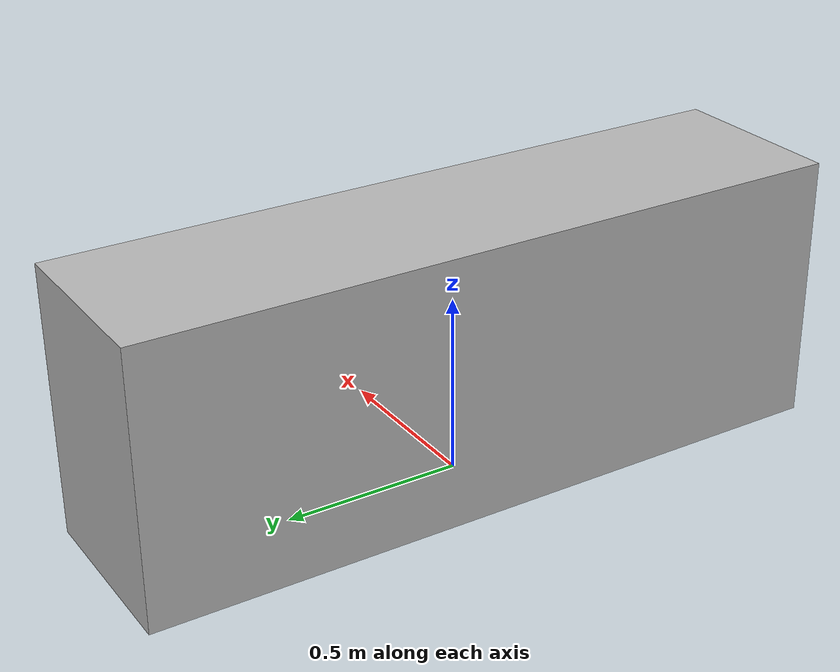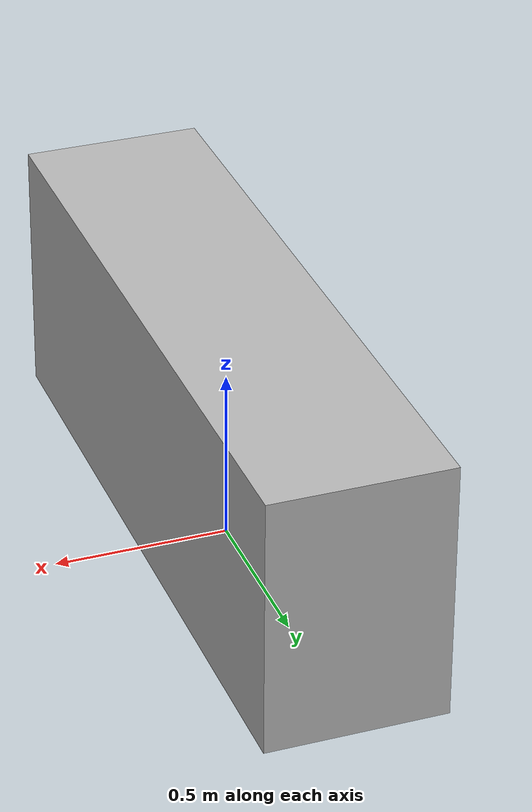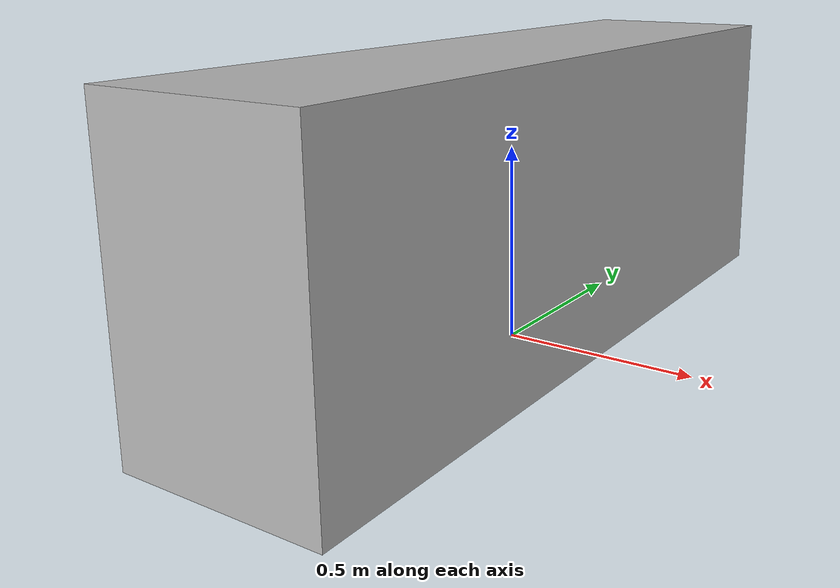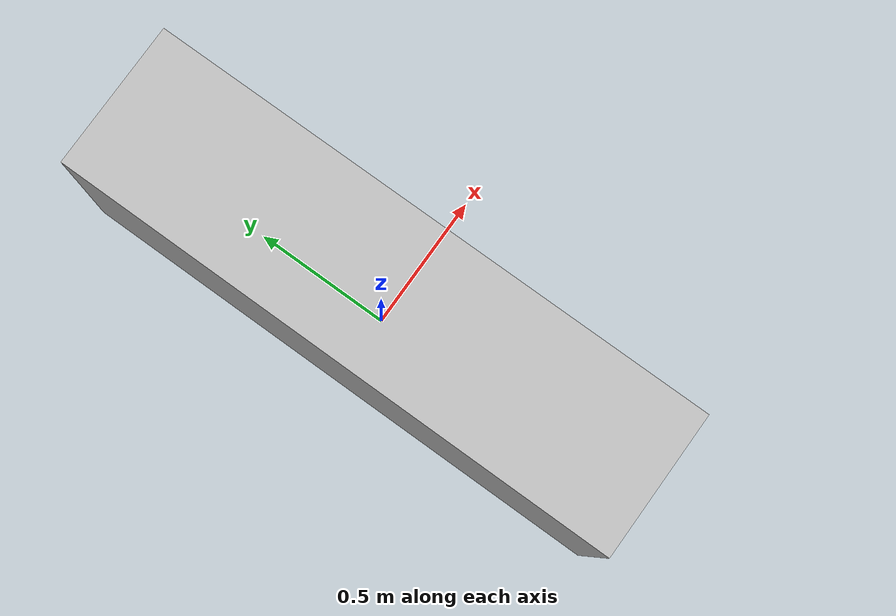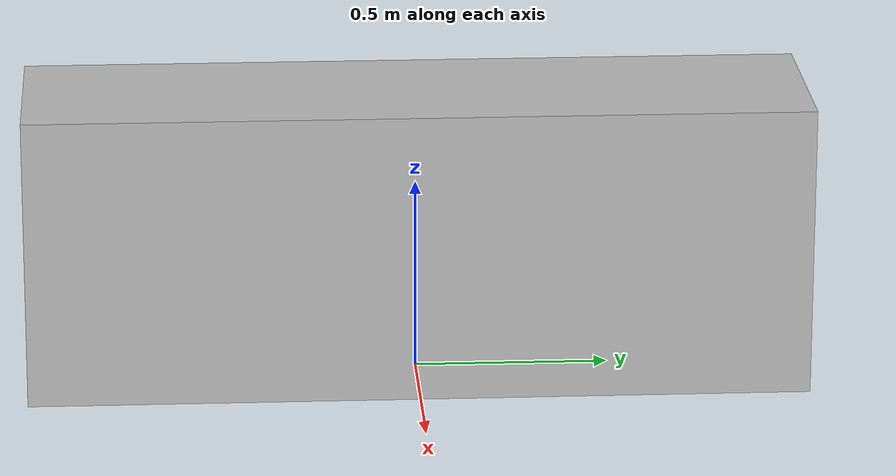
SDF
<?xml version="1.0"?>
<sdf version="1.6">
  <model name="rwc2019/display_cabinet">
    <link name="1_link">
      <collision name="1_col">
        <geometry>
          <box>
            <size>0.513 2.0 0.75</size>
          </box>
        </geometry>
      </collision>
      <visual name="1_vis">
        <geometry>
          <box>
            <size>0.513 2.0 0.75</size>
          </box>
        </geometry>
      </visual>
      <pose>0.0 0.0 0.375 0 0 0</pose>
    </link>
    <link name="on_top_of">
      <virtual_volume name="on_top_of_vv">
        <geometry>
          <box>
            <size>0.493 0.96 0.25</size>
          </box>
        </geometry>
        <pose>0.0 -0.48 0.895 0 0 0</pose>
      </virtual_volume>
    </link>
    <link name="in_front_of">
      <virtual_volume name="in_front_of_vv">
        <geometry>
          <box>
            <size>0.2 0.4 0.01</size>
          </box>
        </geometry>
        <pose>0.7565 -0.8 0.005 0 0 0</pose>
      </virtual_volume>
    </link>
    <static>true</static>
  </model>
</sdf>
